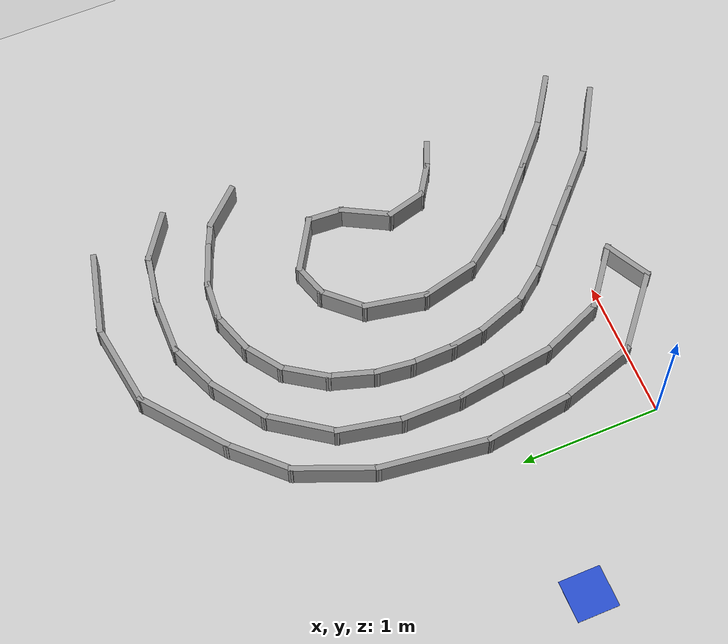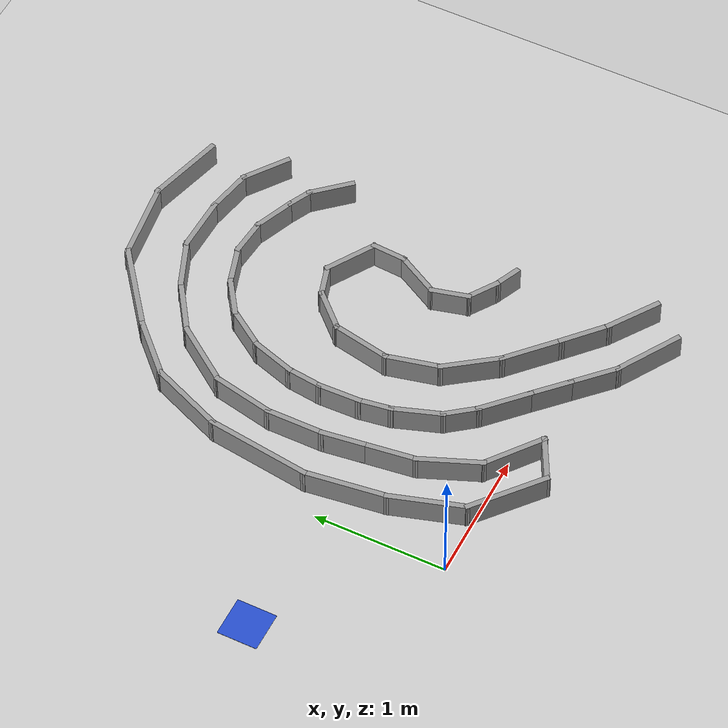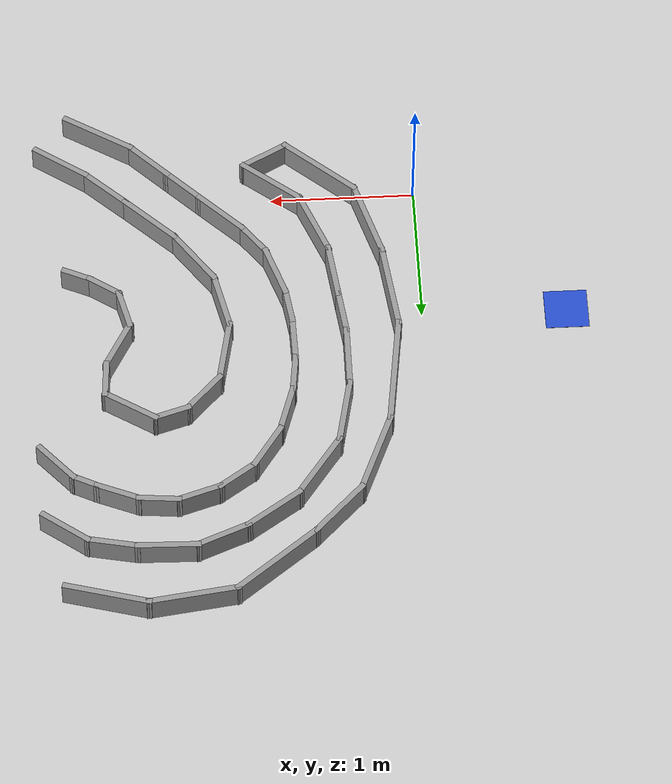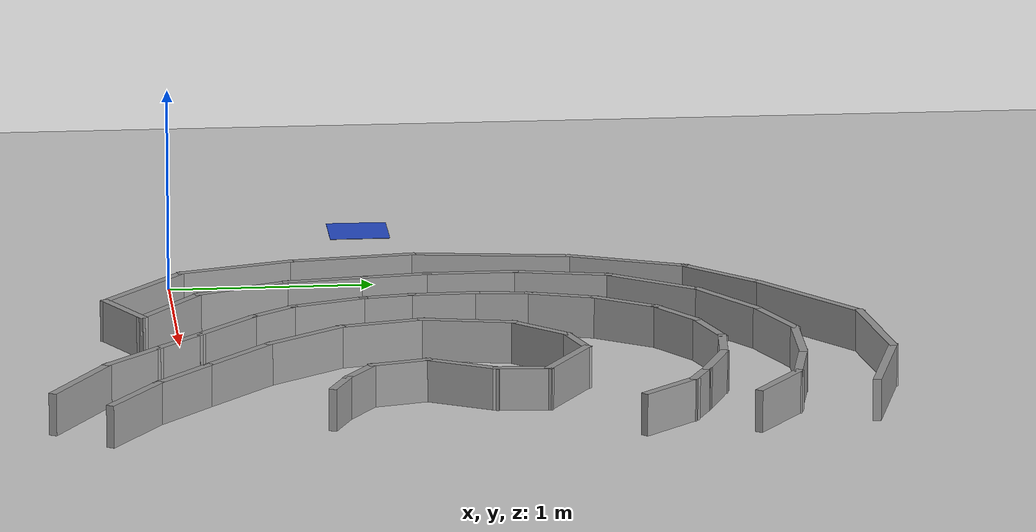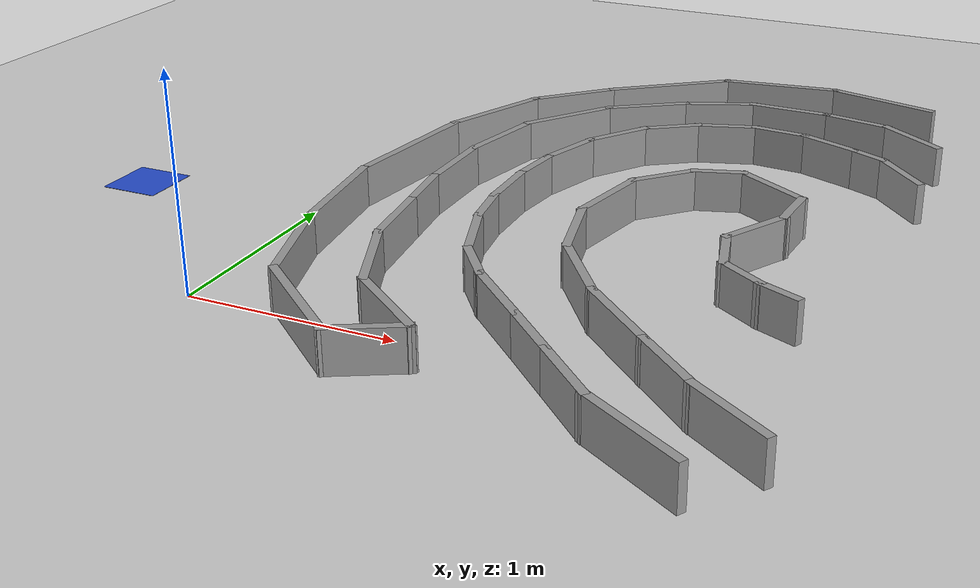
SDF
<sdf version="1.4">
 <world name="default">
  <model name="ground_plane">
   <static>1</static>
   <link name="link">
    <collision name="collision">
     <geometry><plane><normal>0 0 1</normal><size>100 100</size></plane></geometry>
     <surface><friction><ode><mu>100</mu><mu2>50</mu2></ode></friction></surface>
    </collision>
    <visual name="visual">
     <cast_shadows>0</cast_shadows>
     <geometry><plane><normal>0 0 1</normal><size>100 100</size></plane></geometry>
     <material>
      <script><uri>file://media/materials/scripts/gazebo.material</uri><name>Gazebo/Grey</name></script>
     </material>
    </visual>
    <velocity_decay><linear>0</linear><angular>0</angular></velocity_decay>
   </link>
  </model>
  <model name="thymio_maze_large">
   <link name="Wall_10">
    <collision name="Wall_10_Collision">
     <geometry><box><size>0.640228 0.04 0.2</size></box></geometry>
     <pose>0 0 0.1 0 -0 0</pose>
    </collision>
    <visual name="Wall_10_Visual">
     <pose>0 0 0.1 0 -0 0</pose>
     <geometry><box><size>0.640228 0.04 0.2</size></box></geometry>
     <material>
      <script><uri>file://media/materials/scripts/gazebo.material</uri><name>Gazebo/Grey</name></script>
     </material>
    </visual>
    <velocity_decay><linear>0</linear><angular>0</angular></velocity_decay>
    <pose>1.65914 3.25351 0 0 -0 0.1309</pose>
   </link>
   <link name="Wall_100">
    <collision name="Wall_100_Collision">
     <geometry><box><size>0.22806 0.04 0.2</size></box></geometry>
     <pose>0 0 0.1 0 -0 0</pose>
    </collision>
    <visual name="Wall_100_Visual">
     <pose>0 0 0.1 0 -0 0</pose>
     <geometry><box><size>0.22806 0.04 0.2</size></box></geometry>
     <material>
      <script><uri>file://media/materials/scripts/gazebo.material</uri><name>Gazebo/Grey</name></script>
     </material>
    </visual>
    <velocity_decay><linear>0</linear><angular>0</angular></velocity_decay>
    <pose>2.36575 0.672355 0 0 0 -0.415979</pose>
   </link>
   <link name="Wall_11">
    <collision name="Wall_11_Collision">
     <geometry><box><size>0.612031 0.04 0.2</size></box></geometry>
     <pose>0 0 0.1 0 -0 0</pose>
    </collision>
    <visual name="Wall_11_Visual">
     <pose>0 0 0.1 0 -0 0</pose>
     <geometry><box><size>0.612031 0.04 0.2</size></box></geometry>
     <material>
      <script><uri>file://media/materials/scripts/gazebo.material</uri><name>Gazebo/Grey</name></script>
     </material>
    </visual>
    <velocity_decay><linear>0</linear><angular>0</angular></velocity_decay>
    <pose>2.23278 3.21864 0 0 0 -0.261799</pose>
   </link>
   <link name="Wall_3">
    <collision name="Wall_3_Collision">
     <geometry><box><size>0.64059 0.04 0.2</size></box></geometry>
     <pose>0 0 0.1 0 -0 0</pose>
    </collision>
    <visual name="Wall_3_Visual">
     <pose>0 0 0.1 0 -0 0</pose>
     <geometry><box><size>0.64059 0.04 0.2</size></box></geometry>
     <material>
      <script><uri>file://media/materials/scripts/gazebo.material</uri><name>Gazebo/Grey</name></script>
     </material>
    </visual>
    <velocity_decay><linear>0</linear><angular>0</angular></velocity_decay>
    <pose>0.650699 -0.152621 0 0 -0 2.44735</pose>
   </link>
   <link name="Wall_30">
    <collision name="Wall_30_Collision">
     <geometry><box><size>0.397703 0.04 0.2</size></box></geometry>
     <pose>0 0 0.1 0 -0 0</pose>
    </collision>
    <visual name="Wall_30_Visual">
     <pose>0 0 0.1 0 -0 0</pose>
     <geometry><box><size>0.397703 0.04 0.2</size></box></geometry>
     <material>
      <script><uri>file://media/materials/scripts/gazebo.material</uri><name>Gazebo/Grey</name></script>
     </material>
    </visual>
    <velocity_decay><linear>0</linear><angular>0</angular></velocity_decay>
    <pose>2.49668 2.69081 0 0 -0 2.51912</pose>
   </link>
   <link name="Wall_31">
    <collision name="Wall_31_Collision">
     <geometry><box><size>0.377767 0.04 0.2</size></box></geometry>
     <pose>0 0 0.1 0 -0 0</pose>
    </collision>
    <visual name="Wall_31_Visual">
     <pose>0 0 0.1 0 -0 0</pose>
     <geometry><box><size>0.377767 0.04 0.2</size></box></geometry>
     <material>
      <script><uri>file://media/materials/scripts/gazebo.material</uri><name>Gazebo/Grey</name></script>
     </material>
    </visual>
    <velocity_decay><linear>0</linear><angular>0</angular></velocity_decay>
    <pose>2.18571 2.82788 0 0 -0 2.94618</pose>
   </link>
   <link name="Wall_32">
    <collision name="Wall_32_Collision">
     <geometry><box><size>0.445946 0.04 0.2</size></box></geometry>
     <pose>0 0 0.1 0 -0 0</pose>
    </collision>
    <visual name="Wall_32_Visual">
     <pose>0 0 0.1 0 -0 0</pose>
     <geometry><box><size>0.445946 0.04 0.2</size></box></geometry>
     <material>
      <script><uri>file://media/materials/scripts/gazebo.material</uri><name>Gazebo/Grey</name></script>
     </material>
    </visual>
    <velocity_decay><linear>0</linear><angular>0</angular></velocity_decay>
    <pose>1.81708 2.86564 0 0 -0 3.1171</pose>
   </link>
   <link name="Wall_33">
    <collision name="Wall_33_Collision">
     <geometry><box><size>0.408855 0.04 0.2</size></box></geometry>
     <pose>0 0 0.1 0 -0 0</pose>
    </collision>
    <visual name="Wall_33_Visual">
     <pose>0 0 0.1 0 -0 0</pose>
     <geometry><box><size>0.408855 0.04 0.2</size></box></geometry>
     <material>
      <script><uri>file://media/materials/scripts/gazebo.material</uri><name>Gazebo/Grey</name></script>
     </material>
    </visual>
    <velocity_decay><linear>0</linear><angular>0</angular></velocity_decay>
    <pose>1.44303 2.80176 0 0 0 -2.75902</pose>
   </link>
   <link name="Wall_34">
    <collision name="Wall_34_Collision">
     <geometry><box><size>0.46591 0.04 0.2</size></box></geometry>
     <pose>0 0 0.1 0 -0 0</pose>
    </collision>
    <visual name="Wall_34_Visual">
     <pose>0 0 0.1 0 -0 0</pose>
     <geometry><box><size>0.46591 0.04 0.2</size></box></geometry>
     <material>
      <script><uri>file://media/materials/scripts/gazebo.material</uri><name>Gazebo/Grey</name></script>
     </material>
    </visual>
    <velocity_decay><linear>0</linear><angular>0</angular></velocity_decay>
    <pose>1.09545 2.61374 0 0 0 -2.54765</pose>
   </link>
   <link name="Wall_35">
    <collision name="Wall_35_Collision">
     <geometry><box><size>0.537216 0.04 0.2</size></box></geometry>
     <pose>0 0 0.1 0 -0 0</pose>
    </collision>
    <visual name="Wall_35_Visual">
     <pose>0 0 0.1 0 -0 0</pose>
     <geometry><box><size>0.537216 0.04 0.2</size></box></geometry>
     <material>
      <script><uri>file://media/materials/scripts/gazebo.material</uri><name>Gazebo/Grey</name></script>
     </material>
    </visual>
    <velocity_decay><linear>0</linear><angular>0</angular></velocity_decay>
    <pose>0.773701 2.29281 0 0 0 -2.19482</pose>
   </link>
   <link name="Wall_36">
    <collision name="Wall_36_Collision">
     <geometry><box><size>0.496142 0.04 0.2</size></box></geometry>
     <pose>0 0 0.1 0 -0 0</pose>
    </collision>
    <visual name="Wall_36_Visual">
     <pose>0 0 0.1 0 -0 0</pose>
     <geometry><box><size>0.496142 0.04 0.2</size></box></geometry>
     <material>
      <script><uri>file://media/materials/scripts/gazebo.material</uri><name>Gazebo/Grey</name></script>
     </material>
    </visual>
    <velocity_decay><linear>0</linear><angular>0</angular></velocity_decay>
    <pose>0.581968 1.86777 0 0 0 -1.77599</pose>
   </link>
   <link name="Wall_37">
    <collision name="Wall_37_Collision">
     <geometry><box><size>0.464137 0.04 0.2</size></box></geometry>
     <pose>0 0 0.1 0 -0 0</pose>
    </collision>
    <visual name="Wall_37_Visual">
     <pose>0 0 0.1 0 -0 0</pose>
     <geometry><box><size>0.464137 0.04 0.2</size></box></geometry>
     <material>
      <script><uri>file://media/materials/scripts/gazebo.material</uri><name>Gazebo/Grey</name></script>
     </material>
    </visual>
    <velocity_decay><linear>0</linear><angular>0</angular></velocity_decay>
    <pose>0.535498 1.43241 0 0 0 -1.5708</pose>
   </link>
   <link name="Wall_38">
    <collision name="Wall_38_Collision">
     <geometry><box><size>0.344538 0.04 0.2</size></box></geometry>
     <pose>0 0 0.1 0 -0 0</pose>
    </collision>
    <visual name="Wall_38_Visual">
     <pose>0 0 0.1 0 -0 0</pose>
     <geometry><box><size>0.344538 0.04 0.2</size></box></geometry>
     <material>
      <script><uri>file://media/materials/scripts/gazebo.material</uri><name>Gazebo/Grey</name></script>
     </material>
    </visual>
    <velocity_decay><linear>0</linear><angular>0</angular></velocity_decay>
    <pose>0.555346 1.06958 0 0 0 -1.4399</pose>
   </link>
   <link name="Wall_39">
    <collision name="Wall_39_Collision">
     <geometry><box><size>0.426425 0.04 0.2</size></box></geometry>
     <pose>0 0 0.1 0 -0 0</pose>
    </collision>
    <visual name="Wall_39_Visual">
     <pose>0 0 0.1 0 -0 0</pose>
     <geometry><box><size>0.426425 0.04 0.2</size></box></geometry>
     <material>
      <script><uri>file://media/materials/scripts/gazebo.material</uri><name>Gazebo/Grey</name></script>
     </material>
    </visual>
    <velocity_decay><linear>0</linear><angular>0</angular></velocity_decay>
    <pose>0.600447 0.727005 0 0 0 -1.4399</pose>
   </link>
   <link name="Wall_4">
    <collision name="Wall_4_Collision">
     <geometry><box><size>0.599597 0.04 0.2</size></box></geometry>
     <pose>0 0 0.1 0 -0 0</pose>
    </collision>
    <visual name="Wall_4_Visual">
     <pose>0 0 0.1 0 -0 0</pose>
     <geometry><box><size>0.599597 0.04 0.2</size></box></geometry>
     <material>
      <script><uri>file://media/materials/scripts/gazebo.material</uri><name>Gazebo/Grey</name></script>
     </material>
    </visual>
    <velocity_decay><linear>0</linear><angular>0</angular></velocity_decay>
    <pose>0.336794 0.306676 0 0 -0 1.87241</pose>
   </link>
   <link name="Wall_40">
    <collision name="Wall_40_Collision">
     <geometry><box><size>0.508927 0.04 0.2</size></box></geometry>
     <pose>0 0 0.1 0 -0 0</pose>
    </collision>
    <visual name="Wall_40_Visual">
     <pose>0 0 0.1 0 -0 0</pose>
     <geometry><box><size>0.508927 0.04 0.2</size></box></geometry>
     <material>
      <script><uri>file://media/materials/scripts/gazebo.material</uri><name>Gazebo/Grey</name></script>
     </material>
    </visual>
    <velocity_decay><linear>0</linear><angular>0</angular></velocity_decay>
    <pose>0.715425 0.318573 0 0 0 -1.1781</pose>
   </link>
   <link name="Wall_41">
    <collision name="Wall_41_Collision">
     <geometry><box><size>0.51206 0.04 0.2</size></box></geometry>
     <pose>0 0 0.1 0 -0 0</pose>
    </collision>
    <visual name="Wall_41_Visual">
     <pose>0 0 0.1 0 -0 0</pose>
     <geometry><box><size>0.51206 0.04 0.2</size></box></geometry>
     <material>
      <script><uri>file://media/materials/scripts/gazebo.material</uri><name>Gazebo/Grey</name></script>
     </material>
    </visual>
    <velocity_decay><linear>0</linear><angular>0</angular></velocity_decay>
    <pose>0.992405 -0.041729 0 0 0 -0.654498</pose>
   </link>
   <link name="Wall_42">
    <collision name="Wall_42_Collision">
     <geometry><box><size>0.378075 0.04 0.2</size></box></geometry>
     <pose>0 0 0.1 0 -0 0</pose>
    </collision>
    <visual name="Wall_42_Visual">
     <pose>0 0 0.1 0 -0 0</pose>
     <geometry><box><size>0.378075 0.04 0.2</size></box></geometry>
     <material>
      <script><uri>file://media/materials/scripts/gazebo.material</uri><name>Gazebo/Grey</name></script>
     </material>
    </visual>
    <velocity_decay><linear>0</linear><angular>0</angular></velocity_decay>
    <pose>1.03057 -0.265082 0 0 0 -2.65083</pose>
   </link>
   <link name="Wall_44">
    <collision name="Wall_44_Collision">
     <geometry><box><size>0.365477 0.04 0.2</size></box></geometry>
     <pose>0 0 0.1 0 -0 0</pose>
    </collision>
    <visual name="Wall_44_Visual">
     <pose>0 0 0.1 0 -0 0</pose>
     <geometry><box><size>0.365477 0.04 0.2</size></box></geometry>
     <material>
      <script><uri>file://media/materials/scripts/gazebo.material</uri><name>Gazebo/Grey</name></script>
     </material>
    </visual>
    <velocity_decay><linear>0</linear><angular>0</angular></velocity_decay>
    <pose>2.54363 2.18067 0 0 -0 2.30689</pose>
   </link>
   <link name="Wall_45">
    <collision name="Wall_45_Collision">
     <geometry><box><size>0.21552 0.04 0.2</size></box></geometry>
     <pose>0 0 0.1 0 -0 0</pose>
    </collision>
    <visual name="Wall_45_Visual">
     <pose>0 0 0.1 0 -0 0</pose>
     <geometry><box><size>0.21552 0.04 0.2</size></box></geometry>
     <material>
      <script><uri>file://media/materials/scripts/gazebo.material</uri><name>Gazebo/Grey</name></script>
     </material>
    </visual>
    <velocity_decay><linear>0</linear><angular>0</angular></velocity_decay>
    <pose>2.35535 2.33946 0 0 -0 2.69143</pose>
   </link>
   <link name="Wall_46">
    <collision name="Wall_46_Collision">
     <geometry><box><size>0.340346 0.04 0.2</size></box></geometry>
     <pose>0 0 0.1 0 -0 0</pose>
    </collision>
    <visual name="Wall_46_Visual">
     <pose>0 0 0.1 0 -0 0</pose>
     <geometry><box><size>0.340346 0.04 0.2</size></box></geometry>
     <material>
      <script><uri>file://media/materials/scripts/gazebo.material</uri><name>Gazebo/Grey</name></script>
     </material>
    </visual>
    <velocity_decay><linear>0</linear><angular>0</angular></velocity_decay>
    <pose>2.1372 2.43417 0 0 -0 2.75571</pose>
   </link>
   <link name="Wall_47">
    <collision name="Wall_47_Collision">
     <geometry><box><size>0.309003 0.04 0.2</size></box></geometry>
     <pose>0 0 0.1 0 -0 0</pose>
    </collision>
    <visual name="Wall_47_Visual">
     <pose>0 0 0.1 0 -0 0</pose>
     <geometry><box><size>0.309003 0.04 0.2</size></box></geometry>
     <material>
      <script><uri>file://media/materials/scripts/gazebo.material</uri><name>Gazebo/Grey</name></script>
     </material>
    </visual>
    <velocity_decay><linear>0</linear><angular>0</angular></velocity_decay>
    <pose>1.86442 2.50203 0 0 -0 3.05693</pose>
   </link>
   <link name="Wall_48">
    <collision name="Wall_48_Collision">
     <geometry><box><size>0.337261 0.04 0.2</size></box></geometry>
     <pose>0 0 0.1 0 -0 0</pose>
    </collision>
    <visual name="Wall_48_Visual">
     <pose>0 0 0.1 0 -0 0</pose>
     <geometry><box><size>0.337261 0.04 0.2</size></box></geometry>
     <material>
      <script><uri>file://media/materials/scripts/gazebo.material</uri><name>Gazebo/Grey</name></script>
     </material>
    </visual>
    <velocity_decay><linear>0</linear><angular>0</angular></velocity_decay>
    <pose>1.589 2.46876 0 0 0 -2.83674</pose>
   </link>
   <link name="Wall_49">
    <collision name="Wall_49_Collision">
     <geometry><box><size>0.328591 0.04 0.2</size></box></geometry>
     <pose>0 0 0.1 0 -0 0</pose>
    </collision>
    <visual name="Wall_49_Visual">
     <pose>0 0 0.1 0 -0 0</pose>
     <geometry><box><size>0.328591 0.04 0.2</size></box></geometry>
     <material>
      <script><uri>file://media/materials/scripts/gazebo.material</uri><name>Gazebo/Grey</name></script>
     </material>
    </visual>
    <velocity_decay><linear>0</linear><angular>0</angular></velocity_decay>
    <pose>1.32813 2.34268 0 0 0 -2.5416</pose>
   </link>
   <link name="Wall_5">
    <collision name="Wall_5_Collision">
     <geometry><box><size>0.645624 0.04 0.2</size></box></geometry>
     <pose>0 0 0.1 0 -0 0</pose>
    </collision>
    <visual name="Wall_5_Visual">
     <pose>0 0 0.1 0 -0 0</pose>
     <geometry><box><size>0.645624 0.04 0.2</size></box></geometry>
     <material>
      <script><uri>file://media/materials/scripts/gazebo.material</uri><name>Gazebo/Grey</name></script>
     </material>
    </visual>
    <velocity_decay><linear>0</linear><angular>0</angular></velocity_decay>
    <pose>0.214152 0.874066 0 0 -0 1.7017</pose>
   </link>
   <link name="Wall_50">
    <collision name="Wall_50_Collision">
     <geometry><box><size>0.370008 0.04 0.2</size></box></geometry>
     <pose>0 0 0.1 0 -0 0</pose>
    </collision>
    <visual name="Wall_50_Visual">
     <pose>0 0 0.1 0 -0 0</pose>
     <geometry><box><size>0.370008 0.04 0.2</size></box></geometry>
     <material>
      <script><uri>file://media/materials/scripts/gazebo.material</uri><name>Gazebo/Grey</name></script>
     </material>
    </visual>
    <velocity_decay><linear>0</linear><angular>0</angular></velocity_decay>
    <pose>1.11603 2.12491 0 0 0 -2.1696</pose>
   </link>
   <link name="Wall_51">
    <collision name="Wall_51_Collision">
     <geometry><box><size>0.366065 0.04 0.2</size></box></geometry>
     <pose>0 0 0.1 0 -0 0</pose>
    </collision>
    <visual name="Wall_51_Visual">
     <pose>0 0 0.1 0 -0 0</pose>
     <geometry><box><size>0.366065 0.04 0.2</size></box></geometry>
     <material>
      <script><uri>file://media/materials/scripts/gazebo.material</uri><name>Gazebo/Grey</name></script>
     </material>
    </visual>
    <velocity_decay><linear>0</linear><angular>0</angular></velocity_decay>
    <pose>0.973687 1.83323 0 0 0 -1.87825</pose>
   </link>
   <link name="Wall_52">
    <collision name="Wall_52_Collision">
     <geometry><box><size>0.295107 0.04 0.2</size></box></geometry>
     <pose>0 0 0.1 0 -0 0</pose>
    </collision>
    <visual name="Wall_52_Visual">
     <pose>0 0 0.1 0 -0 0</pose>
     <geometry><box><size>0.295107 0.04 0.2</size></box></geometry>
     <material>
      <script><uri>file://media/materials/scripts/gazebo.material</uri><name>Gazebo/Grey</name></script>
     </material>
    </visual>
    <velocity_decay><linear>0</linear><angular>0</angular></velocity_decay>
    <pose>0.909226 1.55118 0 0 0 -1.68964</pose>
   </link>
   <link name="Wall_53">
    <collision name="Wall_53_Collision">
     <geometry><box><size>0.347454 0.04 0.2</size></box></geometry>
     <pose>0 0 0.1 0 -0 0</pose>
    </collision>
    <visual name="Wall_53_Visual">
     <pose>0 0 0.1 0 -0 0</pose>
     <geometry><box><size>0.347454 0.04 0.2</size></box></geometry>
     <material>
      <script><uri>file://media/materials/scripts/gazebo.material</uri><name>Gazebo/Grey</name></script>
     </material>
    </visual>
    <velocity_decay><linear>0</linear><angular>0</angular></velocity_decay>
    <pose>0.897884 1.27122 0 0 0 -1.54614</pose>
   </link>
   <link name="Wall_54">
    <collision name="Wall_54_Collision">
     <geometry><box><size>0.277514 0.04 0.2</size></box></geometry>
     <pose>0 0 0.1 0 -0 0</pose>
    </collision>
    <visual name="Wall_54_Visual">
     <pose>0 0 0.1 0 -0 0</pose>
     <geometry><box><size>0.277514 0.04 0.2</size></box></geometry>
     <material>
      <script><uri>file://media/materials/scripts/gazebo.material</uri><name>Gazebo/Grey</name></script>
     </material>
    </visual>
    <velocity_decay><linear>0</linear><angular>0</angular></velocity_decay>
    <pose>0.919623 1.00052 0 0 0 -1.41899</pose>
   </link>
   <link name="Wall_55">
    <collision name="Wall_55_Collision">
     <geometry><box><size>0.406 0.04 0.2</size></box></geometry>
     <pose>0 0 0.1 0 -0 0</pose>
    </collision>
    <visual name="Wall_55_Visual">
     <pose>0 0 0.1 0 -0 0</pose>
     <geometry><box><size>0.406 0.04 0.2</size></box></geometry>
     <material>
      <script><uri>file://media/materials/scripts/gazebo.material</uri><name>Gazebo/Grey</name></script>
     </material>
    </visual>
    <velocity_decay><linear>0</linear><angular>0</angular></velocity_decay>
    <pose>0.997884 0.710351 0 0 0 -1.235</pose>
   </link>
   <link name="Wall_56">
    <collision name="Wall_56_Collision">
     <geometry><box><size>0.291678 0.04 0.2</size></box></geometry>
     <pose>0 0 0.1 0 -0 0</pose>
    </collision>
    <visual name="Wall_56_Visual">
     <pose>0 0 0.1 0 -0 0</pose>
     <geometry><box><size>0.291678 0.04 0.2</size></box></geometry>
     <material>
      <script><uri>file://media/materials/scripts/gazebo.material</uri><name>Gazebo/Grey</name></script>
     </material>
    </visual>
    <velocity_decay><linear>0</linear><angular>0</angular></velocity_decay>
    <pose>1.13531 0.43814 0 0 0 -0.911071</pose>
   </link>
   <link name="Wall_57">
    <collision name="Wall_57_Collision">
     <geometry><box><size>0.432062 0.04 0.2</size></box></geometry>
     <pose>0 0 0.1 0 -0 0</pose>
    </collision>
    <visual name="Wall_57_Visual">
     <pose>0 0 0.1 0 -0 0</pose>
     <geometry><box><size>0.432062 0.04 0.2</size></box></geometry>
     <material>
      <script><uri>file://media/materials/scripts/gazebo.material</uri><name>Gazebo/Grey</name></script>
     </material>
    </visual>
    <velocity_decay><linear>0</linear><angular>0</angular></velocity_decay>
    <pose>1.35478 0.203924 0 0 0 -0.75812</pose>
   </link>
   <link name="Wall_58">
    <collision name="Wall_58_Collision">
     <geometry><box><size>0.342955 0.04 0.2</size></box></geometry>
     <pose>0 0 0.1 0 -0 0</pose>
    </collision>
    <visual name="Wall_58_Visual">
     <pose>0 0 0.1 0 -0 0</pose>
     <geometry><box><size>0.342955 0.04 0.2</size></box></geometry>
     <material>
      <script><uri>file://media/materials/scripts/gazebo.material</uri><name>Gazebo/Grey</name></script>
     </material>
    </visual>
    <velocity_decay><linear>0</linear><angular>0</angular></velocity_decay>
    <pose>1.60639 -0.035774 0 0 0 -0.765101</pose>
   </link>
   <link name="Wall_59">
    <collision name="Wall_59_Collision">
     <geometry><box><size>0.389746 0.04 0.2</size></box></geometry>
     <pose>0 0 0.1 0 -0 0</pose>
    </collision>
    <visual name="Wall_59_Visual">
     <pose>0 0 0.1 0 -0 0</pose>
     <geometry><box><size>0.389746 0.04 0.2</size></box></geometry>
     <material>
      <script><uri>file://media/materials/scripts/gazebo.material</uri><name>Gazebo/Grey</name></script>
     </material>
    </visual>
    <velocity_decay><linear>0</linear><angular>0</angular></velocity_decay>
    <pose>1.84174 -0.26186 0 0 0 -0.765523</pose>
   </link>
   <link name="Wall_6">
    <collision name="Wall_6_Collision">
     <geometry><box><size>0.813503 0.04 0.2</size></box></geometry>
     <pose>0 0 0.1 0 -0 0</pose>
    </collision>
    <visual name="Wall_6_Visual">
     <pose>0 0 0.1 0 -0 0</pose>
     <geometry><box><size>0.813503 0.04 0.2</size></box></geometry>
     <material>
      <script><uri>file://media/materials/scripts/gazebo.material</uri><name>Gazebo/Grey</name></script>
     </material>
    </visual>
    <velocity_decay><linear>0</linear><angular>0</angular></velocity_decay>
    <pose>0.225152 1.55806 0 0 -0 1.4399</pose>
   </link>
   <link name="Wall_60">
    <collision name="Wall_60_Collision">
     <geometry><box><size>0.555275 0.04 0.2</size></box></geometry>
     <pose>0 0 0.1 0 -0 0</pose>
    </collision>
    <visual name="Wall_60_Visual">
     <pose>0 0 0.1 0 -0 0</pose>
     <geometry><box><size>0.555275 0.04 0.2</size></box></geometry>
     <material>
      <script><uri>file://media/materials/scripts/gazebo.material</uri><name>Gazebo/Grey</name></script>
     </material>
    </visual>
    <velocity_decay><linear>0</linear><angular>0</angular></velocity_decay>
    <pose>2.189 -0.515169 0 0 0 -0.538532</pose>
   </link>
   <link name="Wall_7">
    <collision name="Wall_7_Collision">
     <geometry><box><size>0.616295 0.04 0.2</size></box></geometry>
     <pose>0 0 0.1 0 -0 0</pose>
    </collision>
    <visual name="Wall_7_Visual">
     <pose>0 0 0.1 0 -0 0</pose>
     <geometry><box><size>0.616295 0.04 0.2</size></box></geometry>
     <material>
      <script><uri>file://media/materials/scripts/gazebo.material</uri><name>Gazebo/Grey</name></script>
     </material>
    </visual>
    <velocity_decay><linear>0</linear><angular>0</angular></velocity_decay>
    <pose>0.385945 2.20804 0 0 -0 1.1781</pose>
   </link>
   <link name="Wall_8">
    <collision name="Wall_8_Collision">
     <geometry><box><size>0.501615 0.04 0.2</size></box></geometry>
     <pose>0 0 0.1 0 -0 0</pose>
    </collision>
    <visual name="Wall_8_Visual">
     <pose>0 0 0.1 0 -0 0</pose>
     <geometry><box><size>0.501615 0.04 0.2</size></box></geometry>
     <material>
      <script><uri>file://media/materials/scripts/gazebo.material</uri><name>Gazebo/Grey</name></script>
     </material>
    </visual>
    <velocity_decay><linear>0</linear><angular>0</angular></velocity_decay>
    <pose>0.65942 2.63746 0 0 -0 0.785398</pose>
   </link>
   <link name="Wall_87">
    <collision name="Wall_87_Collision">
     <geometry><box><size>0.449788 0.04 0.2</size></box></geometry>
     <pose>0 0 0.1 0 -0 0</pose>
    </collision>
    <visual name="Wall_87_Visual">
     <pose>0 0 0.1 0 -0 0</pose>
     <geometry><box><size>0.449788 0.04 0.2</size></box></geometry>
     <material>
      <script><uri>file://media/materials/scripts/gazebo.material</uri><name>Gazebo/Grey</name></script>
     </material>
    </visual>
    <velocity_decay><linear>0</linear><angular>0</angular></velocity_decay>
    <pose>2.45667 -0.278307 0 0 -0 2.55052</pose>
   </link>
   <link name="Wall_88">
    <collision name="Wall_88_Collision">
     <geometry><box><size>0.404847 0.04 0.2</size></box></geometry>
     <pose>0 0 0.1 0 -0 0</pose>
    </collision>
    <visual name="Wall_88_Visual">
     <pose>0 0 0.1 0 -0 0</pose>
     <geometry><box><size>0.404847 0.04 0.2</size></box></geometry>
     <material>
      <script><uri>file://media/materials/scripts/gazebo.material</uri><name>Gazebo/Grey</name></script>
     </material>
    </visual>
    <velocity_decay><linear>0</linear><angular>0</angular></velocity_decay>
    <pose>2.15119 -0.041823 0 0 -0 2.40678</pose>
   </link>
   <link name="Wall_89">
    <collision name="Wall_89_Collision">
     <geometry><box><size>0.491076 0.04 0.2</size></box></geometry>
     <pose>0 0 0.1 0 -0 0</pose>
    </collision>
    <visual name="Wall_89_Visual">
     <pose>0 0 0.1 0 -0 0</pose>
     <geometry><box><size>0.491076 0.04 0.2</size></box></geometry>
     <material>
      <script><uri>file://media/materials/scripts/gazebo.material</uri><name>Gazebo/Grey</name></script>
     </material>
    </visual>
    <velocity_decay><linear>0</linear><angular>0</angular></velocity_decay>
    <pose>1.85025 0.233603 0 0 -0 2.39532</pose>
   </link>
   <link name="Wall_9">
    <collision name="Wall_9_Collision">
     <geometry><box><size>0.719573 0.04 0.2</size></box></geometry>
     <pose>0 0 0.1 0 -0 0</pose>
    </collision>
    <visual name="Wall_9_Visual">
     <pose>0 0 0.1 0 -0 0</pose>
     <geometry><box><size>0.719573 0.04 0.2</size></box></geometry>
     <material>
      <script><uri>file://media/materials/scripts/gazebo.material</uri><name>Gazebo/Grey</name></script>
     </material>
    </visual>
    <velocity_decay><linear>0</linear><angular>0</angular></velocity_decay>
    <pose>1.0922 3.00752 0 0 -0 0.654498</pose>
   </link>
   <link name="Wall_90">
    <collision name="Wall_90_Collision">
     <geometry><box><size>0.478356 0.04 0.2</size></box></geometry>
     <pose>0 0 0.1 0 -0 0</pose>
    </collision>
    <visual name="Wall_90_Visual">
     <pose>0 0 0.1 0 -0 0</pose>
     <geometry><box><size>0.478356 0.04 0.2</size></box></geometry>
     <material>
      <script><uri>file://media/materials/scripts/gazebo.material</uri><name>Gazebo/Grey</name></script>
     </material>
    </visual>
    <velocity_decay><linear>0</linear><angular>0</angular></velocity_decay>
    <pose>1.55478 0.563281 0 0 -0 2.20498</pose>
   </link>
   <link name="Wall_91">
    <collision name="Wall_91_Collision">
     <geometry><box><size>0.44084 0.04 0.2</size></box></geometry>
     <pose>0 0 0.1 0 -0 0</pose>
    </collision>
    <visual name="Wall_91_Visual">
     <pose>0 0 0.1 0 -0 0</pose>
     <geometry><box><size>0.44084 0.04 0.2</size></box></geometry>
     <material>
      <script><uri>file://media/materials/scripts/gazebo.material</uri><name>Gazebo/Grey</name></script>
     </material>
    </visual>
    <velocity_decay><linear>0</linear><angular>0</angular></velocity_decay>
    <pose>1.37898 0.934926 0 0 -0 1.80205</pose>
   </link>
   <link name="Wall_92">
    <collision name="Wall_92_Collision">
     <geometry><box><size>0.473016 0.04 0.2</size></box></geometry>
     <pose>0 0 0.1 0 -0 0</pose>
    </collision>
    <visual name="Wall_92_Visual">
     <pose>0 0 0.1 0 -0 0</pose>
     <geometry><box><size>0.473016 0.04 0.2</size></box></geometry>
     <material>
      <script><uri>file://media/materials/scripts/gazebo.material</uri><name>Gazebo/Grey</name></script>
     </material>
    </visual>
    <velocity_decay><linear>0</linear><angular>0</angular></velocity_decay>
    <pose>1.37463 1.34249 0 0 -0 1.37751</pose>
   </link>
   <link name="Wall_93">
    <collision name="Wall_93_Collision">
     <geometry><box><size>0.364373 0.04 0.2</size></box></geometry>
     <pose>0 0 0.1 0 -0 0</pose>
    </collision>
    <visual name="Wall_93_Visual">
     <pose>0 0 0.1 0 -0 0</pose>
     <geometry><box><size>0.364373 0.04 0.2</size></box></geometry>
     <material>
      <script><uri>file://media/materials/scripts/gazebo.material</uri><name>Gazebo/Grey</name></script>
     </material>
    </visual>
    <velocity_decay><linear>0</linear><angular>0</angular></velocity_decay>
    <pose>1.52813 1.67236 0 0 -0 0.809301</pose>
   </link>
   <link name="Wall_94">
    <collision name="Wall_94_Collision">
     <geometry><box><size>0.275499 0.04 0.2</size></box></geometry>
     <pose>0 0 0.1 0 -0 0</pose>
    </collision>
    <visual name="Wall_94_Visual">
     <pose>0 0 0.1 0 -0 0</pose>
     <geometry><box><size>0.275499 0.04 0.2</size></box></geometry>
     <material>
      <script><uri>file://media/materials/scripts/gazebo.material</uri><name>Gazebo/Grey</name></script>
     </material>
    </visual>
    <velocity_decay><linear>0</linear><angular>0</angular></velocity_decay>
    <pose>1.75259 1.82436 0 0 -0 0.298379</pose>
   </link>
   <link name="Wall_95">
    <collision name="Wall_95_Collision">
     <geometry><box><size>0.434214 0.04 0.2</size></box></geometry>
     <pose>0 0 0.1 0 -0 0</pose>
    </collision>
    <visual name="Wall_95_Visual">
     <pose>0 0 0.1 0 -0 0</pose>
     <geometry><box><size>0.434214 0.04 0.2</size></box></geometry>
     <material>
      <script><uri>file://media/materials/scripts/gazebo.material</uri><name>Gazebo/Grey</name></script>
     </material>
    </visual>
    <velocity_decay><linear>0</linear><angular>0</angular></velocity_decay>
    <pose>2.03293 1.75555 0 0 0 -0.552374</pose>
   </link>
   <link name="Wall_96">
    <collision name="Wall_96_Collision">
     <geometry><box><size>0.283217 0.04 0.2</size></box></geometry>
     <pose>0 0 0.1 0 -0 0</pose>
    </collision>
    <visual name="Wall_96_Visual">
     <pose>0 0 0.1 0 -0 0</pose>
     <geometry><box><size>0.283217 0.04 0.2</size></box></geometry>
     <material>
      <script><uri>file://media/materials/scripts/gazebo.material</uri><name>Gazebo/Grey</name></script>
     </material>
    </visual>
    <velocity_decay><linear>0</linear><angular>0</angular></velocity_decay>
    <pose>2.19297 1.53077 0 0 0 -1.63457</pose>
   </link>
   <link name="Wall_97">
    <collision name="Wall_97_Collision">
     <geometry><box><size>0.391099 0.04 0.2</size></box></geometry>
     <pose>0 0 0.1 0 -0 0</pose>
    </collision>
    <visual name="Wall_97_Visual">
     <pose>0 0 0.1 0 -0 0</pose>
     <geometry><box><size>0.391099 0.04 0.2</size></box></geometry>
     <material>
      <script><uri>file://media/materials/scripts/gazebo.material</uri><name>Gazebo/Grey</name></script>
     </material>
    </visual>
    <velocity_decay><linear>0</linear><angular>0</angular></velocity_decay>
    <pose>2.10072 1.25553 0 0 0 -2.07298</pose>
   </link>
   <link name="Wall_98">
    <collision name="Wall_98_Collision">
     <geometry><box><size>0.310603 0.04 0.2</size></box></geometry>
     <pose>0 0 0.1 0 -0 0</pose>
    </collision>
    <visual name="Wall_98_Visual">
     <pose>0 0 0.1 0 -0 0</pose>
     <geometry><box><size>0.310603 0.04 0.2</size></box></geometry>
     <material>
      <script><uri>file://media/materials/scripts/gazebo.material</uri><name>Gazebo/Grey</name></script>
     </material>
    </visual>
    <velocity_decay><linear>0</linear><angular>0</angular></velocity_decay>
    <pose>2.05006 0.970654 0 0 0 -1.31802</pose>
   </link>
   <link name="Wall_99">
    <collision name="Wall_99_Collision">
     <geometry><box><size>0.274675 0.04 0.2</size></box></geometry>
     <pose>0 0 0.1 0 -0 0</pose>
    </collision>
    <visual name="Wall_99_Visual">
     <pose>0 0 0.1 0 -0 0</pose>
     <geometry><box><size>0.274675 0.04 0.2</size></box></geometry>
     <material>
      <script><uri>file://media/materials/scripts/gazebo.material</uri><name>Gazebo/Grey</name></script>
     </material>
    </visual>
    <velocity_decay><linear>0</linear><angular>0</angular></velocity_decay>
    <pose>2.18182 0.775002 0 0 0 -0.583534</pose>
   </link>
   <static>1</static>
  </model>
  <model name="start">
   <static>1</static>
   <pose>-1 1 0 0 -0 0</pose>
   <link name="pose">
    <inertial>
     <mass>1</mass>
     <inertia><ixx>1</ixx><ixy>0</ixy><ixz>0</ixz><iyy>1</iyy><iyz>0</iyz><izz>1</izz></inertia>
    </inertial>
    <collision name="collision"><geometry><box><size>0.30 0.30 0.002</size></box></geometry></collision>
    <visual name="visual">
     <geometry><box><size>0.30 0.30 0.002</size></box></geometry>
     <material>
      <script><uri>file://media/materials/scripts/gazebo.material</uri><name>Gazebo/Blue</name></script>
     </material>
    </visual>
    <velocity_decay><linear>0</linear><angular>0</angular></velocity_decay>
   </link>
   <static>0</static>
  </model>
 </world>
</sdf>
